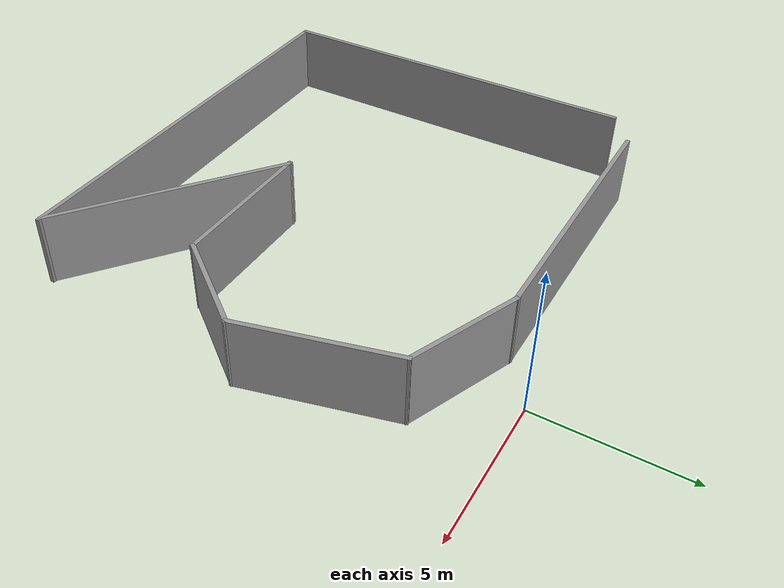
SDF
<?xml version='1.0'?>
<sdf version='1.6'>
  <model name='walls'>
    <pose frame=''>-4.32926 -8.17549 0 0 -0 0</pose>
    <link name='Wall_27'>
      <collision name='Wall_27_Collision'>
        <geometry>
          <box>
            <size>13.25 0.15 2.5</size>
          </box>
        </geometry>
        <pose frame=''>0 0 1.25 0 -0 0</pose>
      </collision>
      <visual name='Wall_27_Visual'>
        <pose frame=''>0 0 1.25 0 -0 0</pose>
        <geometry>
          <box>
            <size>13.25 0.15 2.5</size>
          </box>
        </geometry>
        <material>
          <script>
            <uri>file://media/materials/scripts/gazebo.material</uri>
            <name>Gazebo/Grey</name>
          </script>
          <ambient>1 1 1 1</ambient>
        </material>
      </visual>
      <pose frame=''>-7.77304 -0.454938 0 0 0 -1.5708</pose>
    </link>
    <link name='Wall_28'>
      <collision name='Wall_28_Collision'>
        <geometry>
          <box>
            <size>15 0.15 2.5</size>
          </box>
        </geometry>
        <pose frame=''>0 0 1.25 0 -0 0</pose>
      </collision>
      <visual name='Wall_28_Visual'>
        <pose frame=''>0 0 1.25 0 -0 0</pose>
        <geometry>
          <box>
            <size>15 0.15 2.5</size>
          </box>
        </geometry>
        <material>
          <script>
            <uri>file://media/materials/scripts/gazebo.material</uri>
            <name>Gazebo/Grey</name>
          </script>
          <ambient>1 1 1 1</ambient>
        </material>
      </visual>
      <pose frame=''>-0.348036 -7.00494 0 0 -0 0</pose>
    </link>
    <link name='Wall_29'>
      <collision name='Wall_29_Collision'>
        <geometry>
          <box>
            <size>8.18875 0.15 2.5</size>
          </box>
        </geometry>
        <pose frame=''>0 0 1.25 0 -0 0</pose>
      </collision>
      <visual name='Wall_29_Visual'>
        <pose frame=''>0 0 1.25 0 -0 0</pose>
        <geometry>
          <box>
            <size>8.18875 0.15 2.5</size>
          </box>
        </geometry>
        <material>
          <script>
            <uri>file://media/materials/scripts/gazebo.material</uri>
            <name>Gazebo/Grey</name>
          </script>
          <ambient>1 1 1 1</ambient>
        </material>
      </visual>
      <pose frame=''>3.81162 -4.57782 0 0 -0 2.49326</pose>
    </link>
    <link name='Wall_30'>
      <collision name='Wall_30_Collision'>
        <geometry>
          <box>
            <size>5.25 0.15 2.5</size>
          </box>
        </geometry>
        <pose frame=''>0 0 1.25 0 -0 0</pose>
      </collision>
      <visual name='Wall_30_Visual'>
        <pose frame=''>0 0 1.25 0 -0 0</pose>
        <geometry>
          <box>
            <size>5.25 0.15 2.5</size>
          </box>
        </geometry>
        <material>
          <script>
            <uri>file://media/materials/scripts/gazebo.material</uri>
            <name>Gazebo/Grey</name>
          </script>
          <ambient>1 1 1 1</ambient>
        </material>
      </visual>
      <pose frame=''>3.08704 -2.15069 0 0 -0 0</pose>
    </link>
    <link name='Wall_31'>
      <collision name='Wall_31_Collision'>
        <geometry>
          <box>
            <size>3.64391 0.15 2.5</size>
          </box>
        </geometry>
        <pose frame=''>0 0 1.25 0 -0 0</pose>
      </collision>
      <visual name='Wall_31_Visual'>
        <pose frame=''>0 0 1.25 0 -0 0</pose>
        <geometry>
          <box>
            <size>3.64391 0.15 2.5</size>
          </box>
        </geometry>
        <material>
          <script>
            <uri>file://media/materials/scripts/gazebo.material</uri>
            <name>Gazebo/Grey</name>
          </script>
          <ambient>1 1 1 1</ambient>
        </material>
      </visual>
      <pose frame=''>6.69001 -0.756743 0 0 -0 0.923856</pose>
    </link>
    <link name='Wall_32'>
      <collision name='Wall_32_Collision'>
        <geometry>
          <box>
            <size>5.25 0.15 2.5</size>
          </box>
        </geometry>
        <pose frame=''>0 0 1.25 0 -0 0</pose>
      </collision>
      <visual name='Wall_32_Visual'>
        <pose frame=''>0 0 1.25 0 -0 0</pose>
        <geometry>
          <box>
            <size>5.25 0.15 2.5</size>
          </box>
        </geometry>
        <material>
          <script>
            <uri>file://media/materials/scripts/gazebo.material</uri>
            <name>Gazebo/Grey</name>
          </script>
          <ambient>1 1 1 1</ambient>
        </material>
      </visual>
      <pose frame=''>7.083 3.10032 0 0 -0 1.8326</pose>
    </link>
    <link name='Wall_33'>
      <collision name='Wall_33_Collision'>
        <geometry>
          <box>
            <size>4.0045 0.15 2.5</size>
          </box>
        </geometry>
        <pose frame=''>0 0 1.25 0 -0 0</pose>
      </collision>
      <visual name='Wall_33_Visual'>
        <pose frame=''>0 0 1.25 0 -0 0</pose>
        <geometry>
          <box>
            <size>4.0045 0.15 2.5</size>
          </box>
        </geometry>
        <material>
          <script>
            <uri>file://media/materials/scripts/gazebo.material</uri>
            <name>Gazebo/Grey</name>
          </script>
          <ambient>1 1 1 1</ambient>
        </material>
      </visual>
      <pose frame=''>4.6371 6.28787 0 0 -0 2.75623</pose>
    </link>
    <link name='Wall_34'>
      <collision name='Wall_34_Collision'>
        <geometry>
          <box>
            <size>9.5 0.15 2.5</size>
          </box>
        </geometry>
        <pose frame=''>0 0 1.25 0 -0 0</pose>
      </collision>
      <visual name='Wall_34_Visual'>
        <pose frame=''>0 0 1.25 0 -0 0</pose>
        <geometry>
          <box>
            <size>9.5 0.15 2.5</size>
          </box>
        </geometry>
        <material>
          <script>
            <uri>file://media/materials/scripts/gazebo.material</uri>
            <name>Gazebo/Grey</name>
          </script>
          <ambient>1 1 1 1</ambient>
        </material>
      </visual>
      <pose frame=''>-1.82381 7.01232 0 0 -0 3.14159</pose>
    </link>
    <static>1</static>
  </model>
</sdf>
